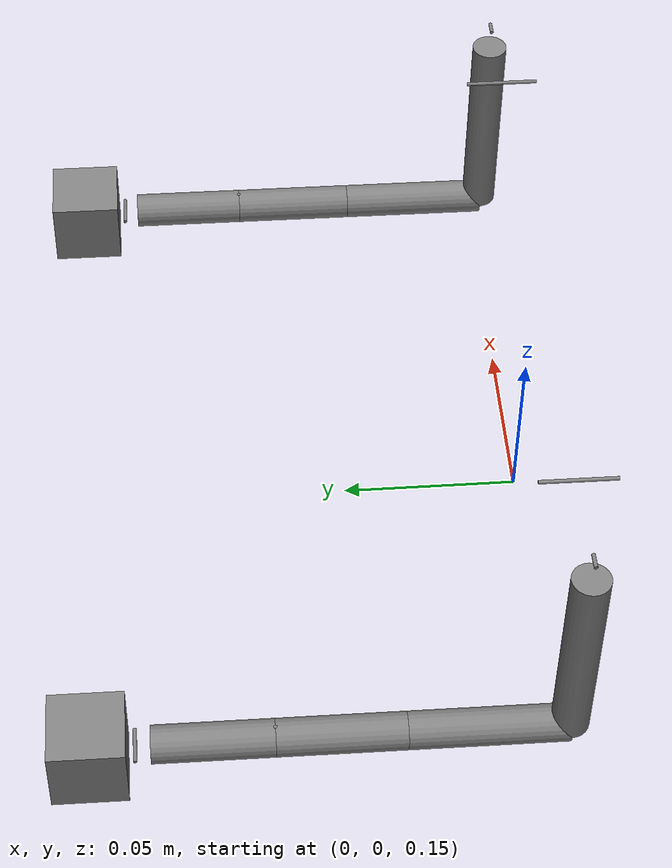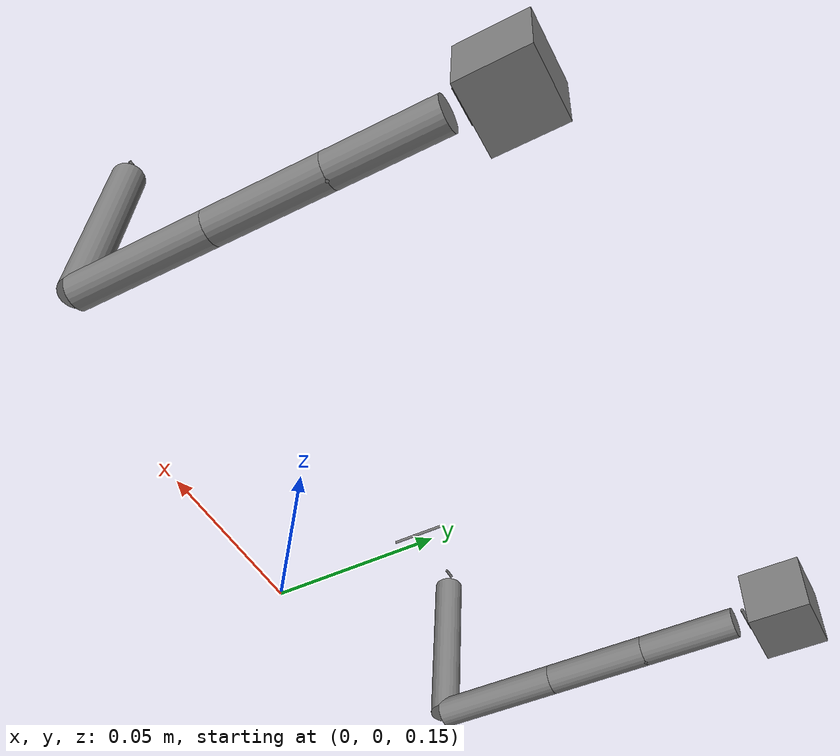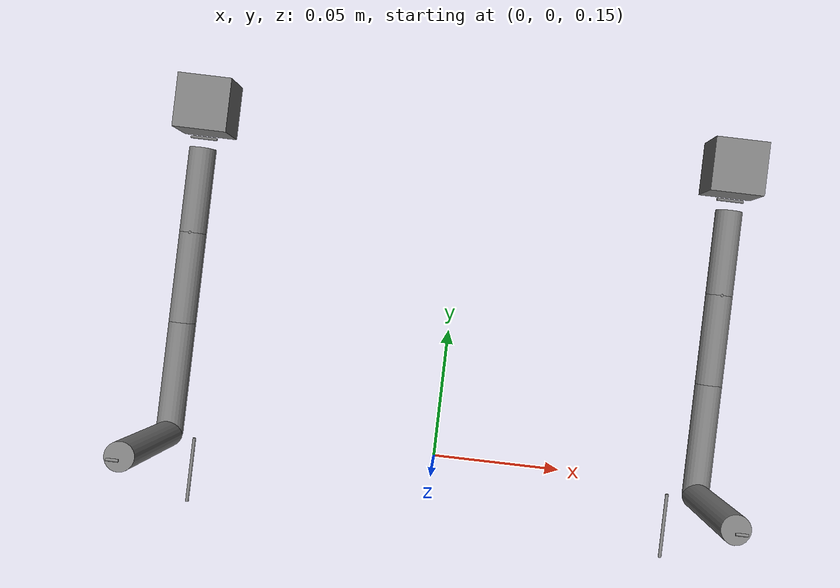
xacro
<?xml version="1.0"?>
<robot name="ne-five-arms" xmlns:xacro="http://www.ros.org/wiki/xacro" >
  <link name="base_link" />
  <link name="shoulder_centre" />

  <joint name="shoulder_centre_arms_joint" type="fixed">
    <origin xyz="0 0 0" />
    <parent link="shoulder_centre" />
    <child link="arms" />
  </joint>

  <link name="forward_indicator" />
  <link name="backward_indicator" />
  <link name="left_indicator" />
  <link name="right_indicator" />

  <joint name="base_link_forward_indicator" type="fixed">
    <origin xyz="0 0.1 0" />
    <parent link="base_link" />
    <child link="forward_indicator" />
  </joint>

  <joint name="base_link_backward_indicator" type="fixed">
    <origin xyz="0 -0.1 0" />
    <parent link="base_link" />
    <child link="backward_indicator" />
  </joint>

  <joint name="base_link_left_indicator" type="fixed">
    <origin xyz="-0.1 0 0" />
    <parent link="base_link" />
    <child link="left_indicator" />
  </joint>

  <joint name="base_link_right_indicator" type="fixed">
    <origin xyz="0.1 0 0" />
    <parent link="base_link" />
    <child link="right_indicator" />
  </joint>

  <joint name="base_link_shoulder_centre" type="fixed">
    <origin xyz="0 0 0.24" />
    <parent link="base_link" />
    <child link="shoulder_centre" />
  </joint>

  <xacro:include filename="arms.xacro" />
  <xacro:include filename="materials.xacro" />

</robot>

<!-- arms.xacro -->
<robot xmlns:xacro="http://www.ros.org/wiki/xacro">

<link name="arms" />

<xacro:macro name="arm" params="prefix reflect">
  <link name="${prefix}_arm" />

  <link name="${prefix}_shoulder_flappy">
    <visual>
      <origin rpy="${pi/2} 0 0" xyz="0 0 0" />
      <geometry>
        <cylinder length="0.02" radius="0.0005" />
      </geometry>
      <material name="grey" />
    </visual>
  </link>

  <link name="${prefix}_shoulder_foreaft">
    <visual>
      <origin rpy="0 ${pi/2} 0" xyz="0 0 0" />
      <geometry>
        <cylinder length="0.004" radius="0.0005" />
      </geometry>
      <material name="grey" />
    </visual>
  </link>

  <link name="${prefix}_shoulder_rotate">
    <visual>
      <origin rpy="0 0 0" xyz="0 0 0" />
      <geometry>
        <cylinder length="0.004" radius="0.0005" />
      </geometry>
      <material name="grey" />
    </visual>
    <visual>
      <origin rpy="0 0 0" xyz="0 0 0.03" />
      <geometry>
        <cylinder length="0.06" radius="0.005" />
      </geometry>
      <material name="grey" />
    </visual>
  </link>

  <link name="${prefix}_elbow">
    <visual>
      <origin rpy="${pi/2} 0 0" xyz="0 0 0" />
      <geometry>
        <cylinder length="0.004" radius="0.0005" />
      </geometry>
      <material name="grey" />
    </visual>
    <visual>
      <origin rpy="0 ${pi/2} 0" xyz="0.021 0 0" />
      <geometry>
        <cylinder length="0.042" radius="0.005" />
      </geometry>
      <material name="grey" />
    </visual>
  </link>

  <link name="${prefix}_wrist_rotate">
    <visual>
      <origin rpy="0 ${pi/2} 0" xyz="0 0 0" />
      <geometry>
        <cylinder length="0.004" radius="0.0005" />
      </geometry>
      <material name="grey" />
    </visual>
    <visual>
      <origin rpy="0 ${pi/2} 0" xyz="0.017 0 0" />
      <geometry>
        <cylinder length="0.034" radius="0.005" />
      </geometry>
      <material name="grey" />
    </visual>
  </link>

  <link name="${prefix}_wrist_pan">
    <visual>
      <geometry>
        <cylinder length="0.01" radius="0.0005" />
      </geometry>
      <material name="grey" />
    </visual>

    <visual>
      <origin rpy="0 ${pi/2} 0" xyz="0.016 0 0" />
      <geometry>
        <cylinder length="0.032" radius="0.005" />
      </geometry>
      <material name="grey" />
    </visual>
  </link>

  <link name="${prefix}_wrist_tilt">
    <visual>
      <geometry>
        <cylinder length="0.01" radius="0.0005" />
      </geometry>
      <material name="grey" />
    </visual>
  </link>

  <link name="${prefix}_hand">
    <visual>
      <geometry>
        <box size="0.02 0.02 0.02" />
      </geometry>
      <material name="grey" />
    </visual>
  </link>

  <joint name="arms_${prefix}_arm" type="fixed">
    <origin rpy="0 0 0" xyz="${reflect * -0.075} 0 0" />
    <parent link="arms" />
    <child link="${prefix}_arm" />
  </joint>

  <joint name="${prefix}_arm_${prefix}_shoulder_flappy_joint" type="revolute">
    <origin rpy="0 0 0" xyz="0 0 0" />
    <parent link="${prefix}_arm" />
    <child link="${prefix}_shoulder_flappy" />
    <axis xyz="0 ${reflect * 1} 0" />
    <limit effort="10" lower="-${pi/2}" upper="${pi/2}" velocity="1000" />
  </joint>

  <joint name="${prefix}_shoulder_flappy_${prefix}_shoulder_foreaft_joint" type="revolute">
    <origin rpy="0 0 0" xyz="${reflect * -0.025} 0 0" />
    <parent link="${prefix}_shoulder_flappy" />
    <child link="${prefix}_shoulder_foreaft" />
    <axis xyz="1 0 0" />
    <limit effort="10" lower="-${pi/2}" upper="${pi/2}" velocity="1000" />
  </joint>

  <joint name="${prefix}_shoulder_foreaft_${prefix}_shoulder_rotate_joint" type="revolute">
    <origin rpy="0 0 -${pi/2}" xyz="0 0 -0.067" />
    <parent link="${prefix}_shoulder_foreaft" />
    <child link="${prefix}_shoulder_rotate" />
    <axis xyz="0 0 ${reflect * 1}" />
    <limit effort="10" lower="-${pi/2}" upper="${pi/2}" velocity="1000" />
  </joint>

  <joint name="${prefix}_shoulder_rotate_${prefix}_elbow_joint" type="revolute">
    <origin rpy="0 ${pi} 0" xyz="0 0 0" />
    <parent link="${prefix}_shoulder_rotate" />
    <child link="${prefix}_elbow" />
    <axis xyz="0 1 0" />
    <limit effort="10" lower="-${pi/2}" upper="${pi/2}" velocity="1000" />
  </joint>

  <joint name="${prefix}_forearm_${prefix}_wrist_rotate_joint" type="revolute">
    <origin rpy="0 0 0" xyz="0.042 0 0" />
    <parent link="${prefix}_elbow" />
    <child link="${prefix}_wrist_rotate" />
    <axis xyz="1 0 0" />
    <limit effort="10" lower="-${pi/2}" upper="${pi/2}" velocity="1000" />
  </joint>

  <joint name="${prefix}_wrist_rotate_${prefix}_wrist_pan_joint" type="revolute">
    <origin rpy="0 0 0" xyz="0.034 0 0" />
    <parent link="${prefix}_wrist_rotate" />
    <child link="${prefix}_wrist_pan" />
    <axis xyz="0 0 1" />
    <limit effort="10" lower="-${pi/2}" upper="${pi/2}" velocity="1000" />
  </joint>

  <joint name="${prefix}_wrist_pan_${prefix}_wrist_tilt_joint" type="revolute">
    <origin rpy="1.57 0 0" xyz="0.036 0 0" />
    <parent link="${prefix}_wrist_pan" />
    <child link="${prefix}_wrist_tilt" />
    <axis xyz="0 0 -1" />
    <limit effort="10" lower="-${pi/2}" upper="${pi/2}" velocity="1000" />
  </joint>

  <joint name="${prefix}_wrist_tilt_${prefix}_hand_joint" type="fixed">
    <origin xyz="0.012 0 0" />
    <parent link="${prefix}_wrist_tilt" />
    <child link="${prefix}_hand" />
  </joint>
</xacro:macro>

<xacro:arm prefix="left" reflect="1"/>
<xacro:arm prefix="right" reflect="-1"/>

</robot>

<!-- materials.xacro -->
<robot xmlns:xacro="http://www.ros.org/wiki/xacro" >
  <material name="grey">
    <color rgba="0.5 0.5 0.5 1" />
  </material>
  <material name="green">
    <color rgba="0 0.5 0 1" />
  </material>
  <material name="black">
    <color rgba="0 0 0 1" />
  </material>
  <material name="Default-Material">
    <color rgba="1 1 1 1" />
  </material>
</robot>
